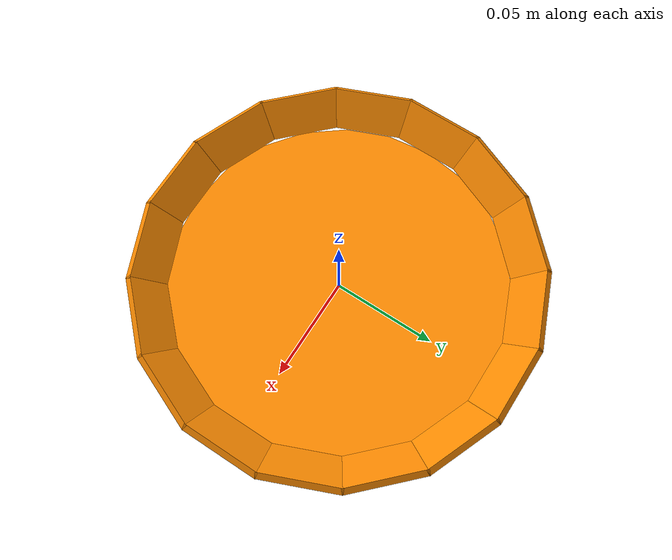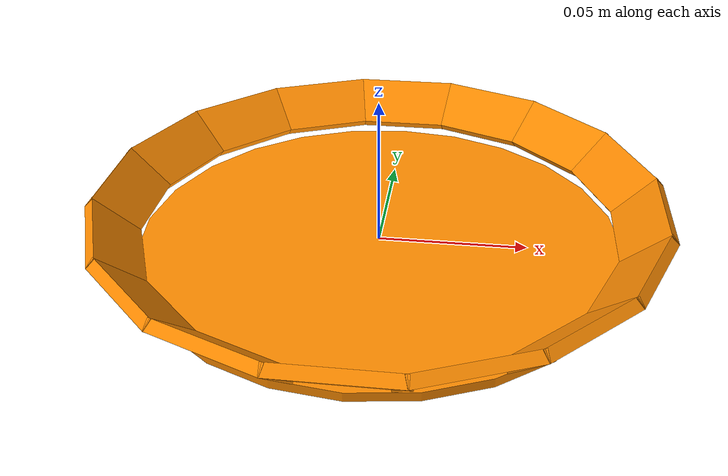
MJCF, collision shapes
<?xml version='1.0' encoding='utf-8'?>
<mujoco model="plate">
  <compiler angle="radian" autolimits="true" />
  <option integrator="implicitfast" timestep="0.001" gravity="0 0 -9.81" cone="elliptic" impratio="10" solver="Newton" iterations="100" ls_iterations="20">
    <flag contact="enable" />
  </option>
  <default>
    <geom condim="3" solref="0.008 1" solimp="0.96 0.995 0.001 0.5 2" margin="0" contype="1" conaffinity="7" />
    <joint damping="2.5" armature="0.002" />
  </default>
  <asset>
    <material name="mat_v2_OmniPBR_1" rgba="0.791506 0.333105 0.333105 1" />
    <material name="collision_object_mat" rgba="0 0.55 1.0 0.18" />
    <mesh name="dynamic_plate2_mesh" file="meshes/plate2_exact.obj" inertia="shell" />
  </asset>
  <worldbody>
    <body name="dynamic_plate2" pos="0 0 0" quat="1 0 0 0">
      <freejoint name="dynamic_plate2_freejoint" />
      <inertial pos="0 0 0" mass="0.24" diaginertia="0.00055 0.00055 0.001" />
      <body name="dynamic_plate2_usd_internal" pos="0.000168005542513 6.75743812844e-05 -0.00117016905994" quat="0.999999921293 0.000286364022771 0.000272620422813 -3.29795052885e-05">
        <geom name="visual_dynamic_plate2" type="mesh" mesh="dynamic_plate2_mesh" material="mat_v2_OmniPBR_1" group="1" contype="0" conaffinity="0" density="0" />
        <geom name="collision_plate_fast_base_disk" type="cylinder" pos="3.72529029846e-08 7.45058059692e-09 0.00155" size="0.081 0.0015" condim="3" friction="1.45 0.02 0.002" group="3" contype="1" conaffinity="7" density="0" material="collision_object_mat" rgba="1 0.55 0 0.28" solref="0.009 1" solimp="0.90 0.98 0.001" />
        <geom name="collision_plate_fast_rim_00" type="box" pos="0.0862000372529 7.45058059692e-09 0.0129362571614" quat="0.913545458 0 0.406736643 0" size="0.002 0.0189563701 0.0094" condim="3" friction="1.45 0.02 0.002" group="3" contype="1" conaffinity="7" density="0" material="collision_object_mat" rgba="1 0.55 0 0.28" solref="0.009 1" solimp="0.90 0.98 0.001" />
        <geom name="collision_plate_fast_rim_01" type="box" pos="0.0796384529529 0.0329873193506 0.0129362571614" quat="0.895991938 -0.0793503827 0.398921313 0.178223878" size="0.002 0.0189563701 0.0094" condim="3" friction="1.45 0.02 0.002" group="3" contype="1" conaffinity="7" density="0" material="collision_object_mat" rgba="1 0.55 0 0.28" solref="0.009 1" solimp="0.90 0.98 0.001" />
        <geom name="collision_plate_fast_rim_02" type="box" pos="0.0609526417529 0.0609526119506 0.0129362571614" quat="0.84400595 -0.155651375 0.37577566 0.349598711" size="0.002 0.0189563701 0.0094" condim="3" friction="1.45 0.02 0.002" group="3" contype="1" conaffinity="7" density="0" material="collision_object_mat" rgba="1 0.55 0 0.28" solref="0.009 1" solimp="0.90 0.98 0.001" />
        <geom name="collision_plate_fast_rim_03" type="box" pos="0.0329873491529 0.0796384231506 0.0129362571614" quat="0.759585287 -0.225970772 0.338189159 0.507538663" size="0.002 0.0189563701 0.0094" condim="3" friction="1.45 0.02 0.002" group="3" contype="1" conaffinity="7" density="0" material="collision_object_mat" rgba="1 0.55 0 0.28" solref="0.009 1" solimp="0.90 0.98 0.001" />
        <geom name="collision_plate_fast_rim_04" type="box" pos="3.72529029899e-08 0.0862000074506 0.0129362571614" quat="0.645974188 -0.287606238 0.287606238 0.645974188" size="0.002 0.0189563701 0.0094" condim="3" friction="1.45 0.02 0.002" group="3" contype="1" conaffinity="7" density="0" material="collision_object_mat" rgba="1 0.55 0 0.28" solref="0.009 1" solimp="0.90 0.98 0.001" />
        <geom name="collision_plate_fast_rim_05" type="box" pos="-0.0329872746471 0.0796384231506 0.0129362571614" quat="0.507538663 -0.338189159 0.225970772 0.759585287" size="0.002 0.0189563701 0.0094" condim="3" friction="1.45 0.02 0.002" group="3" contype="1" conaffinity="7" density="0" material="collision_object_mat" rgba="1 0.55 0 0.28" solref="0.009 1" solimp="0.90 0.98 0.001" />
        <geom name="collision_plate_fast_rim_06" type="box" pos="-0.0609525672471 0.0609526119506 0.0129362571614" quat="0.349598711 -0.37577566 0.155651375 0.84400595" size="0.002 0.0189563701 0.0094" condim="3" friction="1.45 0.02 0.002" group="3" contype="1" conaffinity="7" density="0" material="collision_object_mat" rgba="1 0.55 0 0.28" solref="0.009 1" solimp="0.90 0.98 0.001" />
        <geom name="collision_plate_fast_rim_07" type="box" pos="-0.0796383784471 0.0329873193506 0.0129362571614" quat="0.178223878 -0.398921313 0.0793503827 0.895991938" size="0.002 0.0189563701 0.0094" condim="3" friction="1.45 0.02 0.002" group="3" contype="1" conaffinity="7" density="0" material="collision_object_mat" rgba="1 0.55 0 0.28" solref="0.009 1" solimp="0.90 0.98 0.001" />
        <geom name="collision_plate_fast_rim_08" type="box" pos="-0.0861999627471 7.45058060748e-09 0.0129362571614" quat="5.5938526e-17 -0.406736643 2.49054364e-17 0.913545458" size="0.002 0.0189563701 0.0094" condim="3" friction="1.45 0.02 0.002" group="3" contype="1" conaffinity="7" density="0" material="collision_object_mat" rgba="1 0.55 0 0.28" solref="0.009 1" solimp="0.90 0.98 0.001" />
        <geom name="collision_plate_fast_rim_09" type="box" pos="-0.0796383784471 -0.0329873044494 0.0129362571614" quat="-0.178223878 -0.398921313 -0.0793503827 0.895991938" size="0.002 0.0189563701 0.0094" condim="3" friction="1.45 0.02 0.002" group="3" contype="1" conaffinity="7" density="0" material="collision_object_mat" rgba="1 0.55 0 0.28" solref="0.009 1" solimp="0.90 0.98 0.001" />
        <geom name="collision_plate_fast_rim_10" type="box" pos="-0.0609525672471 -0.0609525970494 0.0129362571614" quat="-0.349598711 -0.37577566 -0.155651375 0.84400595" size="0.002 0.0189563701 0.0094" condim="3" friction="1.45 0.02 0.002" group="3" contype="1" conaffinity="7" density="0" material="collision_object_mat" rgba="1 0.55 0 0.28" solref="0.009 1" solimp="0.90 0.98 0.001" />
        <geom name="collision_plate_fast_rim_11" type="box" pos="-0.0329872746471 -0.0796384082494 0.0129362571614" quat="-0.507538663 -0.338189159 -0.225970772 0.759585287" size="0.002 0.0189563701 0.0094" condim="3" friction="1.45 0.02 0.002" group="3" contype="1" conaffinity="7" density="0" material="collision_object_mat" rgba="1 0.55 0 0.28" solref="0.009 1" solimp="0.90 0.98 0.001" />
        <geom name="collision_plate_fast_rim_12" type="box" pos="3.72529029688e-08 -0.0861999925494 0.0129362571614" quat="-0.645974188 -0.287606238 -0.287606238 0.645974188" size="0.002 0.0189563701 0.0094" condim="3" friction="1.45 0.02 0.002" group="3" contype="1" conaffinity="7" density="0" material="collision_object_mat" rgba="1 0.55 0 0.28" solref="0.009 1" solimp="0.90 0.98 0.001" />
        <geom name="collision_plate_fast_rim_13" type="box" pos="0.0329873491529 -0.0796384082494 0.0129362571614" quat="-0.759585287 -0.225970772 -0.338189159 0.507538663" size="0.002 0.0189563701 0.0094" condim="3" friction="1.45 0.02 0.002" group="3" contype="1" conaffinity="7" density="0" material="collision_object_mat" rgba="1 0.55 0 0.28" solref="0.009 1" solimp="0.90 0.98 0.001" />
        <geom name="collision_plate_fast_rim_14" type="box" pos="0.0609526417529 -0.0609525970494 0.0129362571614" quat="-0.84400595 -0.155651375 -0.37577566 0.349598711" size="0.002 0.0189563701 0.0094" condim="3" friction="1.45 0.02 0.002" group="3" contype="1" conaffinity="7" density="0" material="collision_object_mat" rgba="1 0.55 0 0.28" solref="0.009 1" solimp="0.90 0.98 0.001" />
        <geom name="collision_plate_fast_rim_15" type="box" pos="0.0796384529529 -0.0329873044494 0.0129362571614" quat="-0.895991938 -0.0793503827 -0.398921313 0.178223878" size="0.002 0.0189563701 0.0094" condim="3" friction="1.45 0.02 0.002" group="3" contype="1" conaffinity="7" density="0" material="collision_object_mat" rgba="1 0.55 0 0.28" solref="0.009 1" solimp="0.90 0.98 0.001" />
      </body>
    </body>
  </worldbody>
</mujoco>
